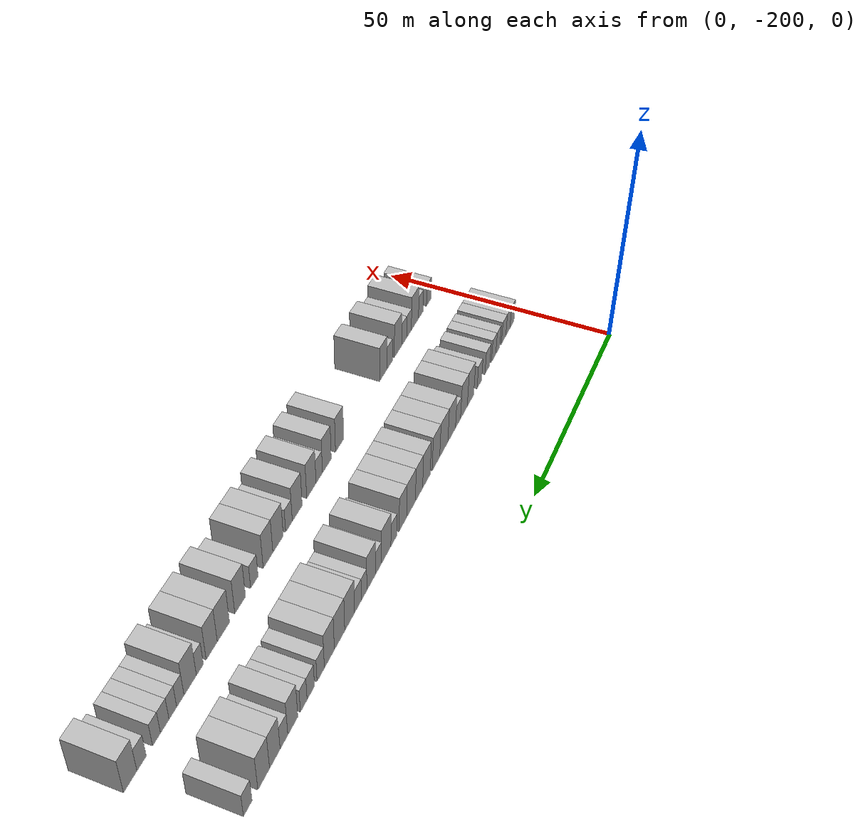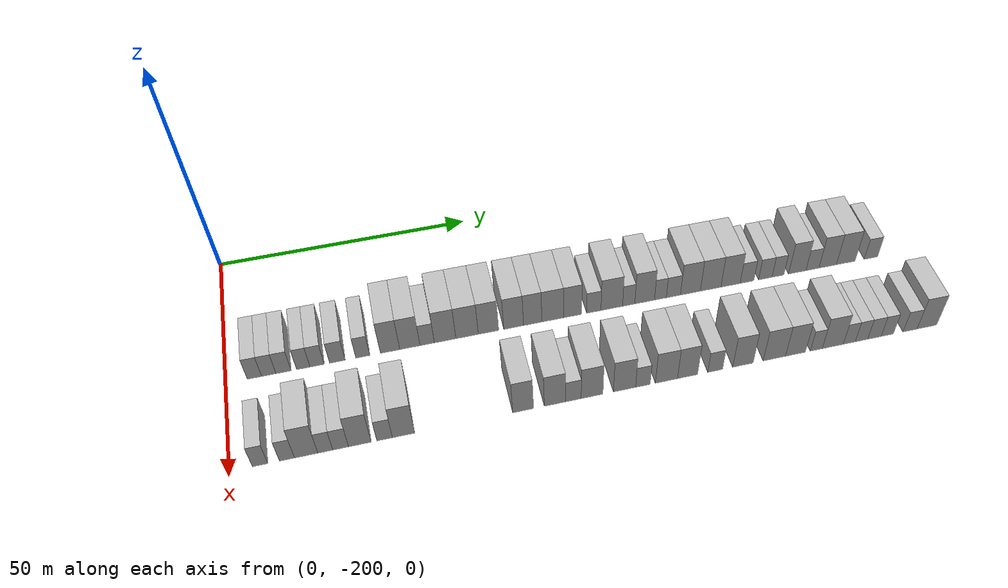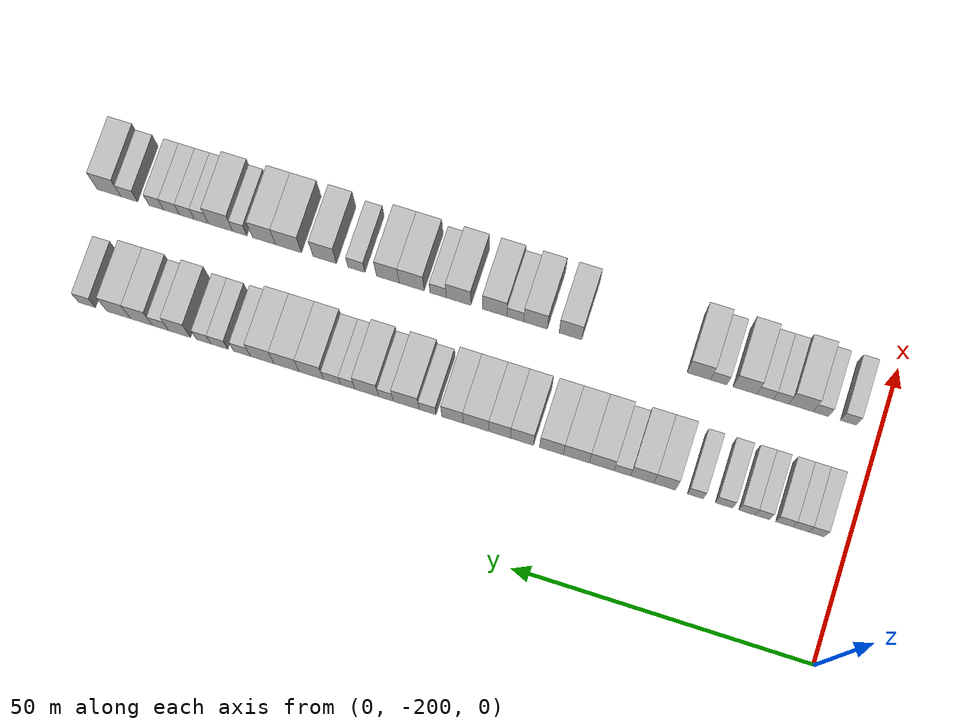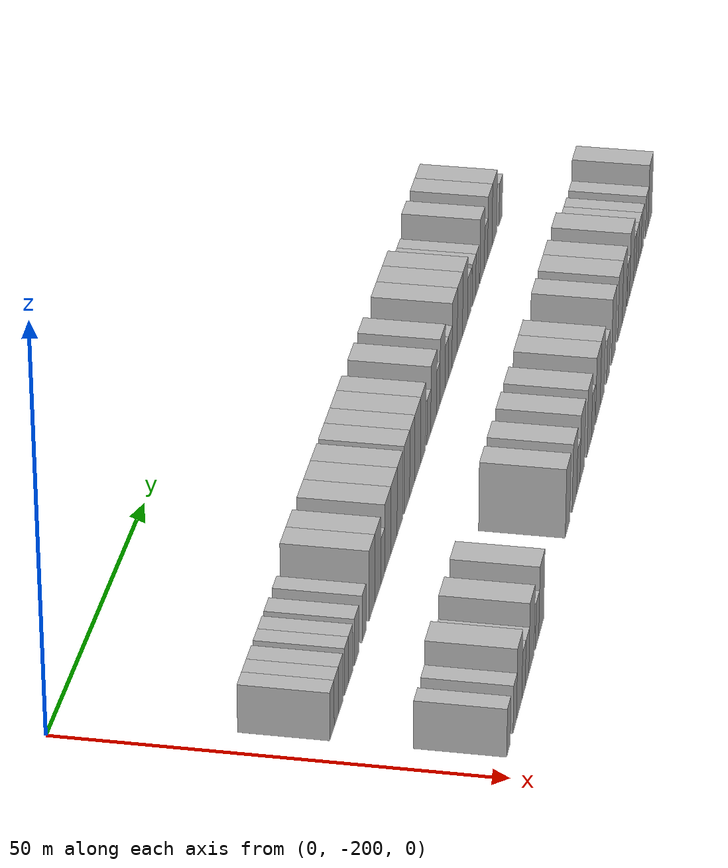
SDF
<sdf version="1.6">
 <world name="default">
  <model name="building_1">
   <static>1</static>
   <pose>25.0000 -194.6913 0 0.000000 0.000000 0.000000</pose>
   <link name="link">
    <pose>0 0 3.00 0 0 0</pose>
    <collision name="collision"><geometry><box><size>10.0000 2.6174 6.0000</size></box></geometry></collision>
    <visual name="visual">
     <cast_shadows>0</cast_shadows>
     <geometry><box><size>10.0000 2.6174 6.0000</size></box></geometry>
     <material>
      <script>
       <uri>model://HANNAS_wall/materials/scripts</uri>
       <uri>model://HANNAS_wall/materials/textures</uri>
       <name>vrc/HANNAS_wall</name>
      </script>
     </material>
    </visual>
   </link>
  </model>
  <model name="building_2">
   <static>1</static>
   <pose>25.0000 -192.0661 0 0.000000 0.000000 0.000000</pose>
   <link name="link">
    <pose>0 0 3.00 0 0 0</pose>
    <collision name="collision"><geometry><box><size>10.0000 2.6331 6.0000</size></box></geometry></collision>
    <visual name="visual">
     <cast_shadows>0</cast_shadows>
     <geometry><box><size>10.0000 2.6331 6.0000</size></box></geometry>
     <material>
      <script>
       <uri>model://HANNAS_wall/materials/scripts</uri>
       <uri>model://HANNAS_wall/materials/textures</uri>
       <name>vrc/HANNAS_wall</name>
      </script>
     </material>
    </visual>
   </link>
  </model>
  <model name="building_3">
   <static>1</static>
   <pose>25.0000 -189.3518 0 0.000000 0.000000 0.000000</pose>
   <link name="link">
    <pose>0 0 3.00 0 0 0</pose>
    <collision name="collision"><geometry><box><size>10.0000 2.7956 6.0000</size></box></geometry></collision>
    <visual name="visual">
     <cast_shadows>0</cast_shadows>
     <geometry><box><size>10.0000 2.7956 6.0000</size></box></geometry>
     <material>
      <script>
       <uri>model://HANNAS_wall/materials/scripts</uri>
       <uri>model://HANNAS_wall/materials/textures</uri>
       <name>vrc/HANNAS_wall</name>
      </script>
     </material>
    </visual>
   </link>
  </model>
  <model name="building_4">
   <static>1</static>
   <pose>25.0000 -185.7143 0 0.000000 0.000000 0.000000</pose>
   <link name="link">
    <pose>0 0 3.00 0 0 0</pose>
    <collision name="collision"><geometry><box><size>10.0000 2.4792 6.0000</size></box></geometry></collision>
    <visual name="visual">
     <cast_shadows>0</cast_shadows>
     <geometry><box><size>10.0000 2.4792 6.0000</size></box></geometry>
     <material>
      <script>
       <uri>model://HANNAS_wall/materials/scripts</uri>
       <uri>model://HANNAS_wall/materials/textures</uri>
       <name>vrc/HANNAS_wall</name>
      </script>
     </material>
    </visual>
   </link>
  </model>
  <model name="building_5">
   <static>1</static>
   <pose>25.0000 -183.1439 0 0.000000 0.000000 0.000000</pose>
   <link name="link">
    <pose>0 0 3.00 0 0 0</pose>
    <collision name="collision"><geometry><box><size>10.0000 2.6617 6.0000</size></box></geometry></collision>
    <visual name="visual">
     <cast_shadows>0</cast_shadows>
     <geometry><box><size>10.0000 2.6617 6.0000</size></box></geometry>
     <material>
      <script>
       <uri>model://HANNAS_wall/materials/scripts</uri>
       <uri>model://HANNAS_wall/materials/textures</uri>
       <name>vrc/HANNAS_wall</name>
      </script>
     </material>
    </visual>
   </link>
  </model>
  <model name="building_6">
   <static>1</static>
   <pose>25.0000 -179.3535 0 0.000000 0.000000 0.000000</pose>
   <link name="link">
    <pose>0 0 3.00 0 0 0</pose>
    <collision name="collision"><geometry><box><size>10.0000 2.9190 6.0000</size></box></geometry></collision>
    <visual name="visual">
     <cast_shadows>0</cast_shadows>
     <geometry><box><size>10.0000 2.9190 6.0000</size></box></geometry>
     <material>
      <script>
       <uri>model://HANNAS_wall/materials/scripts</uri>
       <uri>model://HANNAS_wall/materials/textures</uri>
       <name>vrc/HANNAS_wall</name>
      </script>
     </material>
    </visual>
   </link>
  </model>
  <model name="building_7">
   <static>1</static>
   <pose>25.0000 -174.5721 0 0.000000 0.000000 0.000000</pose>
   <link name="link">
    <pose>0 0 3.00 0 0 0</pose>
    <collision name="collision"><geometry><box><size>10.0000 2.6437 6.0000</size></box></geometry></collision>
    <visual name="visual">
     <cast_shadows>0</cast_shadows>
     <geometry><box><size>10.0000 2.6437 6.0000</size></box></geometry>
     <material>
      <script>
       <uri>model://HANNAS_wall/materials/scripts</uri>
       <uri>model://HANNAS_wall/materials/textures</uri>
       <name>vrc/HANNAS_wall</name>
      </script>
     </material>
    </visual>
   </link>
  </model>
  <model name="building_8">
   <static>1</static>
   <pose>25.0000 -169.4105 0 0.000000 0.000000 0.000000</pose>
   <link name="link">
    <pose>0 0 4.50 0 0 0</pose>
    <collision name="collision"><geometry><box><size>10.0000 3.6795 9.0000</size></box></geometry></collision>
    <visual name="visual">
     <cast_shadows>0</cast_shadows>
     <geometry><box><size>10.0000 3.6795 9.0000</size></box></geometry>
     <material>
      <script>
       <uri>model://HANNAS_wall/materials/scripts</uri>
       <uri>model://HANNAS_wall/materials/textures</uri>
       <name>vrc/HANNAS_wall</name>
      </script>
     </material>
    </visual>
   </link>
  </model>
  <model name="building_9">
   <static>1</static>
   <pose>25.0000 -165.6424 0 0.000000 0.000000 0.000000</pose>
   <link name="link">
    <pose>0 0 4.50 0 0 0</pose>
    <collision name="collision"><geometry><box><size>10.0000 3.8567 9.0000</size></box></geometry></collision>
    <visual name="visual">
     <cast_shadows>0</cast_shadows>
     <geometry><box><size>10.0000 3.8567 9.0000</size></box></geometry>
     <material>
      <script>
       <uri>model://HANNAS_wall/materials/scripts</uri>
       <uri>model://HANNAS_wall/materials/textures</uri>
       <name>vrc/HANNAS_wall</name>
      </script>
     </material>
    </visual>
   </link>
  </model>
  <model name="building_10">
   <static>1</static>
   <pose>25.0000 -162.3278 0 0.000000 0.000000 0.000000</pose>
   <link name="link">
    <pose>0 0 3.00 0 0 0</pose>
    <collision name="collision"><geometry><box><size>10.0000 2.7725 6.0000</size></box></geometry></collision>
    <visual name="visual">
     <cast_shadows>0</cast_shadows>
     <geometry><box><size>10.0000 2.7725 6.0000</size></box></geometry>
     <material>
      <script>
       <uri>model://HANNAS_wall/materials/scripts</uri>
       <uri>model://HANNAS_wall/materials/textures</uri>
       <name>vrc/HANNAS_wall</name>
      </script>
     </material>
    </visual>
   </link>
  </model>
  <model name="building_11">
   <static>1</static>
   <pose>25.0000 -158.8644 0 0.000000 0.000000 0.000000</pose>
   <link name="link">
    <pose>0 0 4.50 0 0 0</pose>
    <collision name="collision"><geometry><box><size>10.0000 4.1543 9.0000</size></box></geometry></collision>
    <visual name="visual">
     <cast_shadows>0</cast_shadows>
     <geometry><box><size>10.0000 4.1543 9.0000</size></box></geometry>
     <material>
      <script>
       <uri>model://HANNAS_wall/materials/scripts</uri>
       <uri>model://HANNAS_wall/materials/textures</uri>
       <name>vrc/HANNAS_wall</name>
      </script>
     </material>
    </visual>
   </link>
  </model>
  <model name="building_12">
   <static>1</static>
   <pose>25.0000 -154.6055 0 0.000000 0.000000 0.000000</pose>
   <link name="link">
    <pose>0 0 4.50 0 0 0</pose>
    <collision name="collision"><geometry><box><size>10.0000 4.3636 9.0000</size></box></geometry></collision>
    <visual name="visual">
     <cast_shadows>0</cast_shadows>
     <geometry><box><size>10.0000 4.3636 9.0000</size></box></geometry>
     <material>
      <script>
       <uri>model://HANNAS_wall/materials/scripts</uri>
       <uri>model://HANNAS_wall/materials/textures</uri>
       <name>vrc/HANNAS_wall</name>
      </script>
     </material>
    </visual>
   </link>
  </model>
  <model name="building_13">
   <static>1</static>
   <pose>25.0000 -150.4279 0 0.000000 0.000000 0.000000</pose>
   <link name="link">
    <pose>0 0 4.50 0 0 0</pose>
    <collision name="collision"><geometry><box><size>10.0000 3.9915 9.0000</size></box></geometry></collision>
    <visual name="visual">
     <cast_shadows>0</cast_shadows>
     <geometry><box><size>10.0000 3.9915 9.0000</size></box></geometry>
     <material>
      <script>
       <uri>model://HANNAS_wall/materials/scripts</uri>
       <uri>model://HANNAS_wall/materials/textures</uri>
       <name>vrc/HANNAS_wall</name>
      </script>
     </material>
    </visual>
   </link>
  </model>
  <model name="building_14">
   <static>1</static>
   <pose>25.0000 -145.4855 0 0.000000 0.000000 0.000000</pose>
   <link name="link">
    <pose>0 0 4.50 0 0 0</pose>
    <collision name="collision"><geometry><box><size>10.0000 3.8934 9.0000</size></box></geometry></collision>
    <visual name="visual">
     <cast_shadows>0</cast_shadows>
     <geometry><box><size>10.0000 3.8934 9.0000</size></box></geometry>
     <material>
      <script>
       <uri>model://HANNAS_wall/materials/scripts</uri>
       <uri>model://HANNAS_wall/materials/textures</uri>
       <name>vrc/HANNAS_wall</name>
      </script>
     </material>
    </visual>
   </link>
  </model>
  <model name="building_15">
   <static>1</static>
   <pose>25.0000 -141.7141 0 0.000000 0.000000 0.000000</pose>
   <link name="link">
    <pose>0 0 4.50 0 0 0</pose>
    <collision name="collision"><geometry><box><size>10.0000 3.6494 9.0000</size></box></geometry></collision>
    <visual name="visual">
     <cast_shadows>0</cast_shadows>
     <geometry><box><size>10.0000 3.6494 9.0000</size></box></geometry>
     <material>
      <script>
       <uri>model://HANNAS_wall/materials/scripts</uri>
       <uri>model://HANNAS_wall/materials/textures</uri>
       <name>vrc/HANNAS_wall</name>
      </script>
     </material>
    </visual>
   </link>
  </model>
  <model name="building_16">
   <static>1</static>
   <pose>25.0000 -137.7262 0 0.000000 0.000000 0.000000</pose>
   <link name="link">
    <pose>0 0 4.50 0 0 0</pose>
    <collision name="collision"><geometry><box><size>10.0000 4.3263 9.0000</size></box></geometry></collision>
    <visual name="visual">
     <cast_shadows>0</cast_shadows>
     <geometry><box><size>10.0000 4.3263 9.0000</size></box></geometry>
     <material>
      <script>
       <uri>model://HANNAS_wall/materials/scripts</uri>
       <uri>model://HANNAS_wall/materials/textures</uri>
       <name>vrc/HANNAS_wall</name>
      </script>
     </material>
    </visual>
   </link>
  </model>
  <model name="building_17">
   <static>1</static>
   <pose>25.0000 -133.7458 0 0.000000 0.000000 0.000000</pose>
   <link name="link">
    <pose>0 0 4.50 0 0 0</pose>
    <collision name="collision"><geometry><box><size>10.0000 3.6346 9.0000</size></box></geometry></collision>
    <visual name="visual">
     <cast_shadows>0</cast_shadows>
     <geometry><box><size>10.0000 3.6346 9.0000</size></box></geometry>
     <material>
      <script>
       <uri>model://HANNAS_wall/materials/scripts</uri>
       <uri>model://HANNAS_wall/materials/textures</uri>
       <name>vrc/HANNAS_wall</name>
      </script>
     </material>
    </visual>
   </link>
  </model>
  <model name="building_18">
   <static>1</static>
   <pose>25.0000 -129.4912 0 0.000000 0.000000 0.000000</pose>
   <link name="link">
    <pose>0 0 3.00 0 0 0</pose>
    <collision name="collision"><geometry><box><size>10.0000 2.8746 6.0000</size></box></geometry></collision>
    <visual name="visual">
     <cast_shadows>0</cast_shadows>
     <geometry><box><size>10.0000 2.8746 6.0000</size></box></geometry>
     <material>
      <script>
       <uri>model://HANNAS_wall/materials/scripts</uri>
       <uri>model://HANNAS_wall/materials/textures</uri>
       <name>vrc/HANNAS_wall</name>
      </script>
     </material>
    </visual>
   </link>
  </model>
  <model name="building_19">
   <static>1</static>
   <pose>25.0000 -125.8565 0 0.000000 0.000000 0.000000</pose>
   <link name="link">
    <pose>0 0 4.50 0 0 0</pose>
    <collision name="collision"><geometry><box><size>10.0000 4.3947 9.0000</size></box></geometry></collision>
    <visual name="visual">
     <cast_shadows>0</cast_shadows>
     <geometry><box><size>10.0000 4.3947 9.0000</size></box></geometry>
     <material>
      <script>
       <uri>model://HANNAS_wall/materials/scripts</uri>
       <uri>model://HANNAS_wall/materials/textures</uri>
       <name>vrc/HANNAS_wall</name>
      </script>
     </material>
    </visual>
   </link>
  </model>
  <model name="building_20">
   <static>1</static>
   <pose>25.0000 -122.4116 0 0.000000 0.000000 0.000000</pose>
   <link name="link">
    <pose>0 0 3.00 0 0 0</pose>
    <collision name="collision"><geometry><box><size>10.0000 2.4952 6.0000</size></box></geometry></collision>
    <visual name="visual">
     <cast_shadows>0</cast_shadows>
     <geometry><box><size>10.0000 2.4952 6.0000</size></box></geometry>
     <material>
      <script>
       <uri>model://HANNAS_wall/materials/scripts</uri>
       <uri>model://HANNAS_wall/materials/textures</uri>
       <name>vrc/HANNAS_wall</name>
      </script>
     </material>
    </visual>
   </link>
  </model>
  <model name="building_21">
   <static>1</static>
   <pose>25.0000 -119.1423 0 0.000000 0.000000 0.000000</pose>
   <link name="link">
    <pose>0 0 4.50 0 0 0</pose>
    <collision name="collision"><geometry><box><size>10.0000 4.0435 9.0000</size></box></geometry></collision>
    <visual name="visual">
     <cast_shadows>0</cast_shadows>
     <geometry><box><size>10.0000 4.0435 9.0000</size></box></geometry>
     <material>
      <script>
       <uri>model://HANNAS_wall/materials/scripts</uri>
       <uri>model://HANNAS_wall/materials/textures</uri>
       <name>vrc/HANNAS_wall</name>
      </script>
     </material>
    </visual>
   </link>
  </model>
  <model name="building_22">
   <static>1</static>
   <pose>25.0000 -115.8984 0 0.000000 0.000000 0.000000</pose>
   <link name="link">
    <pose>0 0 3.00 0 0 0</pose>
    <collision name="collision"><geometry><box><size>10.0000 2.4443 6.0000</size></box></geometry></collision>
    <visual name="visual">
     <cast_shadows>0</cast_shadows>
     <geometry><box><size>10.0000 2.4443 6.0000</size></box></geometry>
     <material>
      <script>
       <uri>model://HANNAS_wall/materials/scripts</uri>
       <uri>model://HANNAS_wall/materials/textures</uri>
       <name>vrc/HANNAS_wall</name>
      </script>
     </material>
    </visual>
   </link>
  </model>
  <model name="building_23">
   <static>1</static>
   <pose>25.0000 -113.2176 0 0.000000 0.000000 0.000000</pose>
   <link name="link">
    <pose>0 0 3.00 0 0 0</pose>
    <collision name="collision"><geometry><box><size>10.0000 2.9173 6.0000</size></box></geometry></collision>
    <visual name="visual">
     <cast_shadows>0</cast_shadows>
     <geometry><box><size>10.0000 2.9173 6.0000</size></box></geometry>
     <material>
      <script>
       <uri>model://HANNAS_wall/materials/scripts</uri>
       <uri>model://HANNAS_wall/materials/textures</uri>
       <name>vrc/HANNAS_wall</name>
      </script>
     </material>
    </visual>
   </link>
  </model>
  <model name="building_24">
   <static>1</static>
   <pose>25.0000 -109.6810 0 0.000000 0.000000 0.000000</pose>
   <link name="link">
    <pose>0 0 4.50 0 0 0</pose>
    <collision name="collision"><geometry><box><size>10.0000 4.1557 9.0000</size></box></geometry></collision>
    <visual name="visual">
     <cast_shadows>0</cast_shadows>
     <geometry><box><size>10.0000 4.1557 9.0000</size></box></geometry>
     <material>
      <script>
       <uri>model://HANNAS_wall/materials/scripts</uri>
       <uri>model://HANNAS_wall/materials/textures</uri>
       <name>vrc/HANNAS_wall</name>
      </script>
     </material>
    </visual>
   </link>
  </model>
  <model name="building_25">
   <static>1</static>
   <pose>25.0000 -105.4493 0 0.000000 0.000000 0.000000</pose>
   <link name="link">
    <pose>0 0 4.50 0 0 0</pose>
    <collision name="collision"><geometry><box><size>10.0000 4.3079 9.0000</size></box></geometry></collision>
    <visual name="visual">
     <cast_shadows>0</cast_shadows>
     <geometry><box><size>10.0000 4.3079 9.0000</size></box></geometry>
     <material>
      <script>
       <uri>model://HANNAS_wall/materials/scripts</uri>
       <uri>model://HANNAS_wall/materials/textures</uri>
       <name>vrc/HANNAS_wall</name>
      </script>
     </material>
    </visual>
   </link>
  </model>
  <model name="building_26">
   <static>1</static>
   <pose>25.0000 -101.2713 0 0.000000 0.000000 0.000000</pose>
   <link name="link">
    <pose>0 0 4.50 0 0 0</pose>
    <collision name="collision"><geometry><box><size>10.0000 4.0480 9.0000</size></box></geometry></collision>
    <visual name="visual">
     <cast_shadows>0</cast_shadows>
     <geometry><box><size>10.0000 4.0480 9.0000</size></box></geometry>
     <material>
      <script>
       <uri>model://HANNAS_wall/materials/scripts</uri>
       <uri>model://HANNAS_wall/materials/textures</uri>
       <name>vrc/HANNAS_wall</name>
      </script>
     </material>
    </visual>
   </link>
  </model>
  <model name="building_27">
   <static>1</static>
   <pose>25.0000 -97.7955 0 0.000000 0.000000 0.000000</pose>
   <link name="link">
    <pose>0 0 3.00 0 0 0</pose>
    <collision name="collision"><geometry><box><size>10.0000 2.9036 6.0000</size></box></geometry></collision>
    <visual name="visual">
     <cast_shadows>0</cast_shadows>
     <geometry><box><size>10.0000 2.9036 6.0000</size></box></geometry>
     <material>
      <script>
       <uri>model://HANNAS_wall/materials/scripts</uri>
       <uri>model://HANNAS_wall/materials/textures</uri>
       <name>vrc/HANNAS_wall</name>
      </script>
     </material>
    </visual>
   </link>
  </model>
  <model name="building_28">
   <static>1</static>
   <pose>25.0000 -93.9045 0 0.000000 0.000000 0.000000</pose>
   <link name="link">
    <pose>0 0 3.00 0 0 0</pose>
    <collision name="collision"><geometry><box><size>10.0000 2.8784 6.0000</size></box></geometry></collision>
    <visual name="visual">
     <cast_shadows>0</cast_shadows>
     <geometry><box><size>10.0000 2.8784 6.0000</size></box></geometry>
     <material>
      <script>
       <uri>model://HANNAS_wall/materials/scripts</uri>
       <uri>model://HANNAS_wall/materials/textures</uri>
       <name>vrc/HANNAS_wall</name>
      </script>
     </material>
    </visual>
   </link>
  </model>
  <model name="building_29">
   <static>1</static>
   <pose>25.0000 -91.1947 0 0.000000 0.000000 0.000000</pose>
   <link name="link">
    <pose>0 0 3.00 0 0 0</pose>
    <collision name="collision"><geometry><box><size>10.0000 2.5411 6.0000</size></box></geometry></collision>
    <visual name="visual">
     <cast_shadows>0</cast_shadows>
     <geometry><box><size>10.0000 2.5411 6.0000</size></box></geometry>
     <material>
      <script>
       <uri>model://HANNAS_wall/materials/scripts</uri>
       <uri>model://HANNAS_wall/materials/textures</uri>
       <name>vrc/HANNAS_wall</name>
      </script>
     </material>
    </visual>
   </link>
  </model>
  <model name="building_30">
   <static>1</static>
   <pose>25.0000 -87.0586 0 0.000000 0.000000 0.000000</pose>
   <link name="link">
    <pose>0 0 4.50 0 0 0</pose>
    <collision name="collision"><geometry><box><size>10.0000 3.7311 9.0000</size></box></geometry></collision>
    <visual name="visual">
     <cast_shadows>0</cast_shadows>
     <geometry><box><size>10.0000 3.7311 9.0000</size></box></geometry>
     <material>
      <script>
       <uri>model://HANNAS_wall/materials/scripts</uri>
       <uri>model://HANNAS_wall/materials/textures</uri>
       <name>vrc/HANNAS_wall</name>
      </script>
     </material>
    </visual>
   </link>
  </model>
  <model name="building_31">
   <static>1</static>
   <pose>25.0000 -83.7866 0 0.000000 0.000000 0.000000</pose>
   <link name="link">
    <pose>0 0 3.00 0 0 0</pose>
    <collision name="collision"><geometry><box><size>10.0000 2.8130 6.0000</size></box></geometry></collision>
    <visual name="visual">
     <cast_shadows>0</cast_shadows>
     <geometry><box><size>10.0000 2.8130 6.0000</size></box></geometry>
     <material>
      <script>
       <uri>model://HANNAS_wall/materials/scripts</uri>
       <uri>model://HANNAS_wall/materials/textures</uri>
       <name>vrc/HANNAS_wall</name>
      </script>
     </material>
    </visual>
   </link>
  </model>
  <model name="building_32">
   <static>1</static>
   <pose>25.0000 -80.4817 0 0.000000 0.000000 0.000000</pose>
   <link name="link">
    <pose>0 0 4.50 0 0 0</pose>
    <collision name="collision"><geometry><box><size>10.0000 3.7967 9.0000</size></box></geometry></collision>
    <visual name="visual">
     <cast_shadows>0</cast_shadows>
     <geometry><box><size>10.0000 3.7967 9.0000</size></box></geometry>
     <material>
      <script>
       <uri>model://HANNAS_wall/materials/scripts</uri>
       <uri>model://HANNAS_wall/materials/textures</uri>
       <name>vrc/HANNAS_wall</name>
      </script>
     </material>
    </visual>
   </link>
  </model>
  <model name="building_33">
   <static>1</static>
   <pose>25.0000 -76.5333 0 0.000000 0.000000 0.000000</pose>
   <link name="link">
    <pose>0 0 4.50 0 0 0</pose>
    <collision name="collision"><geometry><box><size>10.0000 4.1000 9.0000</size></box></geometry></collision>
    <visual name="visual">
     <cast_shadows>0</cast_shadows>
     <geometry><box><size>10.0000 4.1000 9.0000</size></box></geometry>
     <material>
      <script>
       <uri>model://HANNAS_wall/materials/scripts</uri>
       <uri>model://HANNAS_wall/materials/textures</uri>
       <name>vrc/HANNAS_wall</name>
      </script>
     </material>
    </visual>
   </link>
  </model>
  <model name="building_34">
   <static>1</static>
   <pose>25.0000 -71.0130 0 0.000000 0.000000 0.000000</pose>
   <link name="link">
    <pose>0 0 3.00 0 0 0</pose>
    <collision name="collision"><geometry><box><size>10.0000 2.9405 6.0000</size></box></geometry></collision>
    <visual name="visual">
     <cast_shadows>0</cast_shadows>
     <geometry><box><size>10.0000 2.9405 6.0000</size></box></geometry>
     <material>
      <script>
       <uri>model://HANNAS_wall/materials/scripts</uri>
       <uri>model://HANNAS_wall/materials/textures</uri>
       <name>vrc/HANNAS_wall</name>
      </script>
     </material>
    </visual>
   </link>
  </model>
  <model name="building_99">
   <static>1</static>
   <pose>44.0000 -194.6767 0 0.000000 0.000000 0.000000</pose>
   <link name="link">
    <pose>0 0 3.00 0 0 0</pose>
    <collision name="collision"><geometry><box><size>10.0000 2.6466 6.0000</size></box></geometry></collision>
    <visual name="visual">
     <cast_shadows>0</cast_shadows>
     <geometry><box><size>10.0000 2.6466 6.0000</size></box></geometry>
     <material>
      <script>
       <uri>model://HANNAS_wall/materials/scripts</uri>
       <uri>model://HANNAS_wall/materials/textures</uri>
       <name>vrc/HANNAS_wall</name>
      </script>
     </material>
    </visual>
   </link>
  </model>
  <model name="building_100">
   <static>1</static>
   <pose>44.0000 -190.0452 0 0.000000 0.000000 0.000000</pose>
   <link name="link">
    <pose>0 0 3.00 0 0 0</pose>
    <collision name="collision"><geometry><box><size>10.0000 2.6166 6.0000</size></box></geometry></collision>
    <visual name="visual">
     <cast_shadows>0</cast_shadows>
     <geometry><box><size>10.0000 2.6166 6.0000</size></box></geometry>
     <material>
      <script>
       <uri>model://HANNAS_wall/materials/scripts</uri>
       <uri>model://HANNAS_wall/materials/textures</uri>
       <name>vrc/HANNAS_wall</name>
      </script>
     </material>
    </visual>
   </link>
  </model>
  <model name="building_101">
   <static>1</static>
   <pose>44.0000 -186.7082 0 0.000000 0.000000 0.000000</pose>
   <link name="link">
    <pose>0 0 4.50 0 0 0</pose>
    <collision name="collision"><geometry><box><size>10.0000 4.0575 9.0000</size></box></geometry></collision>
    <visual name="visual">
     <cast_shadows>0</cast_shadows>
     <geometry><box><size>10.0000 4.0575 9.0000</size></box></geometry>
     <material>
      <script>
       <uri>model://HANNAS_wall/materials/scripts</uri>
       <uri>model://HANNAS_wall/materials/textures</uri>
       <name>vrc/HANNAS_wall</name>
      </script>
     </material>
    </visual>
   </link>
  </model>
  <model name="building_102">
   <static>1</static>
   <pose>44.0000 -183.3749 0 0.000000 0.000000 0.000000</pose>
   <link name="link">
    <pose>0 0 3.00 0 0 0</pose>
    <collision name="collision"><geometry><box><size>10.0000 2.6091 6.0000</size></box></geometry></collision>
    <visual name="visual">
     <cast_shadows>0</cast_shadows>
     <geometry><box><size>10.0000 2.6091 6.0000</size></box></geometry>
     <material>
      <script>
       <uri>model://HANNAS_wall/materials/scripts</uri>
       <uri>model://HANNAS_wall/materials/textures</uri>
       <name>vrc/HANNAS_wall</name>
      </script>
     </material>
    </visual>
   </link>
  </model>
  <model name="building_103">
   <static>1</static>
   <pose>44.0000 -180.6773 0 0.000000 0.000000 0.000000</pose>
   <link name="link">
    <pose>0 0 3.00 0 0 0</pose>
    <collision name="collision"><geometry><box><size>10.0000 2.7860 6.0000</size></box></geometry></collision>
    <visual name="visual">
     <cast_shadows>0</cast_shadows>
     <geometry><box><size>10.0000 2.7860 6.0000</size></box></geometry>
     <material>
      <script>
       <uri>model://HANNAS_wall/materials/scripts</uri>
       <uri>model://HANNAS_wall/materials/textures</uri>
       <name>vrc/HANNAS_wall</name>
      </script>
     </material>
    </visual>
   </link>
  </model>
  <model name="building_104">
   <static>1</static>
   <pose>44.0000 -177.2849 0 0.000000 0.000000 0.000000</pose>
   <link name="link">
    <pose>0 0 4.50 0 0 0</pose>
    <collision name="collision"><geometry><box><size>10.0000 3.9989 9.0000</size></box></geometry></collision>
    <visual name="visual">
     <cast_shadows>0</cast_shadows>
     <geometry><box><size>10.0000 3.9989 9.0000</size></box></geometry>
     <material>
      <script>
       <uri>model://HANNAS_wall/materials/scripts</uri>
       <uri>model://HANNAS_wall/materials/textures</uri>
       <name>vrc/HANNAS_wall</name>
      </script>
     </material>
    </visual>
   </link>
  </model>
  <model name="building_105">
   <static>1</static>
   <pose>44.0000 -172.8949 0 0.000000 0.000000 0.000000</pose>
   <link name="link">
    <pose>0 0 3.00 0 0 0</pose>
    <collision name="collision"><geometry><box><size>10.0000 2.7812 6.0000</size></box></geometry></collision>
    <visual name="visual">
     <cast_shadows>0</cast_shadows>
     <geometry><box><size>10.0000 2.7812 6.0000</size></box></geometry>
     <material>
      <script>
       <uri>model://HANNAS_wall/materials/scripts</uri>
       <uri>model://HANNAS_wall/materials/textures</uri>
       <name>vrc/HANNAS_wall</name>
      </script>
     </material>
    </visual>
   </link>
  </model>
  <model name="building_106">
   <static>1</static>
   <pose>44.0000 -169.5135 0 0.000000 0.000000 0.000000</pose>
   <link name="link">
    <pose>0 0 4.50 0 0 0</pose>
    <collision name="collision"><geometry><box><size>10.0000 3.9815 9.0000</size></box></geometry></collision>
    <visual name="visual">
     <cast_shadows>0</cast_shadows>
     <geometry><box><size>10.0000 3.9815 9.0000</size></box></geometry>
     <material>
      <script>
       <uri>model://HANNAS_wall/materials/scripts</uri>
       <uri>model://HANNAS_wall/materials/textures</uri>
       <name>vrc/HANNAS_wall</name>
      </script>
     </material>
    </visual>
   </link>
  </model>
  <model name="building_107">
   <static>1</static>
   <pose>44.0000 -147.7225 0 0.000000 0.000000 0.000000</pose>
   <link name="link">
    <pose>0 0 4.50 0 0 0</pose>
    <collision name="collision"><geometry><box><size>10.0000 3.8668 9.0000</size></box></geometry></collision>
    <visual name="visual">
     <cast_shadows>0</cast_shadows>
     <geometry><box><size>10.0000 3.8668 9.0000</size></box></geometry>
     <material>
      <script>
       <uri>model://HANNAS_wall/materials/scripts</uri>
       <uri>model://HANNAS_wall/materials/textures</uri>
       <name>vrc/HANNAS_wall</name>
      </script>
     </material>
    </visual>
   </link>
  </model>
  <model name="building_108">
   <static>1</static>
   <pose>44.0000 -141.7808 0 0.000000 0.000000 0.000000</pose>
   <link name="link">
    <pose>0 0 4.50 0 0 0</pose>
    <collision name="collision"><geometry><box><size>10.0000 4.0166 9.0000</size></box></geometry></collision>
    <visual name="visual">
     <cast_shadows>0</cast_shadows>
     <geometry><box><size>10.0000 4.0166 9.0000</size></box></geometry>
     <material>
      <script>
       <uri>model://HANNAS_wall/materials/scripts</uri>
       <uri>model://HANNAS_wall/materials/textures</uri>
       <name>vrc/HANNAS_wall</name>
      </script>
     </material>
    </visual>
   </link>
  </model>
  <model name="building_109">
   <static>1</static>
   <pose>44.0000 -138.3194 0 0.000000 0.000000 0.000000</pose>
   <link name="link">
    <pose>0 0 3.00 0 0 0</pose>
    <collision name="collision"><geometry><box><size>10.0000 2.9062 6.0000</size></box></geometry></collision>
    <visual name="visual">
     <cast_shadows>0</cast_shadows>
     <geometry><box><size>10.0000 2.9062 6.0000</size></box></geometry>
     <material>
      <script>
       <uri>model://HANNAS_wall/materials/scripts</uri>
       <uri>model://HANNAS_wall/materials/textures</uri>
       <name>vrc/HANNAS_wall</name>
      </script>
     </material>
    </visual>
   </link>
  </model>
  <model name="building_110">
   <static>1</static>
   <pose>44.0000 -134.8042 0 0.000000 0.000000 0.000000</pose>
   <link name="link">
    <pose>0 0 4.50 0 0 0</pose>
    <collision name="collision"><geometry><box><size>10.0000 4.1242 9.0000</size></box></geometry></collision>
    <visual name="visual">
     <cast_shadows>0</cast_shadows>
     <geometry><box><size>10.0000 4.1242 9.0000</size></box></geometry>
     <material>
      <script>
       <uri>model://HANNAS_wall/materials/scripts</uri>
       <uri>model://HANNAS_wall/materials/textures</uri>
       <name>vrc/HANNAS_wall</name>
      </script>
     </material>
    </visual>
   </link>
  </model>
  <model name="building_111">
   <static>1</static>
   <pose>44.0000 -128.6199 0 0.000000 0.000000 0.000000</pose>
   <link name="link">
    <pose>0 0 4.50 0 0 0</pose>
    <collision name="collision"><geometry><box><size>10.0000 4.2445 9.0000</size></box></geometry></collision>
    <visual name="visual">
     <cast_shadows>0</cast_shadows>
     <geometry><box><size>10.0000 4.2445 9.0000</size></box></geometry>
     <material>
      <script>
       <uri>model://HANNAS_wall/materials/scripts</uri>
       <uri>model://HANNAS_wall/materials/textures</uri>
       <name>vrc/HANNAS_wall</name>
      </script>
     </material>
    </visual>
   </link>
  </model>
  <model name="building_112">
   <static>1</static>
   <pose>44.0000 -125.0983 0 0.000000 0.000000 0.000000</pose>
   <link name="link">
    <pose>0 0 3.00 0 0 0</pose>
    <collision name="collision"><geometry><box><size>10.0000 2.7988 6.0000</size></box></geometry></collision>
    <visual name="visual">
     <cast_shadows>0</cast_shadows>
     <geometry><box><size>10.0000 2.7988 6.0000</size></box></geometry>
     <material>
      <script>
       <uri>model://HANNAS_wall/materials/scripts</uri>
       <uri>model://HANNAS_wall/materials/textures</uri>
       <name>vrc/HANNAS_wall</name>
      </script>
     </material>
    </visual>
   </link>
  </model>
  <model name="building_113">
   <static>1</static>
   <pose>44.0000 -120.5499 0 0.000000 0.000000 0.000000</pose>
   <link name="link">
    <pose>0 0 4.50 0 0 0</pose>
    <collision name="collision"><geometry><box><size>10.0000 4.2979 9.0000</size></box></geometry></collision>
    <visual name="visual">
     <cast_shadows>0</cast_shadows>
     <geometry><box><size>10.0000 4.2979 9.0000</size></box></geometry>
     <material>
      <script>
       <uri>model://HANNAS_wall/materials/scripts</uri>
       <uri>model://HANNAS_wall/materials/textures</uri>
       <name>vrc/HANNAS_wall</name>
      </script>
     </material>
    </visual>
   </link>
  </model>
  <model name="building_114">
   <static>1</static>
   <pose>44.0000 -116.4455 0 0.000000 0.000000 0.000000</pose>
   <link name="link">
    <pose>0 0 4.50 0 0 0</pose>
    <collision name="collision"><geometry><box><size>10.0000 3.9110 9.0000</size></box></geometry></collision>
    <visual name="visual">
     <cast_shadows>0</cast_shadows>
     <geometry><box><size>10.0000 3.9110 9.0000</size></box></geometry>
     <material>
      <script>
       <uri>model://HANNAS_wall/materials/scripts</uri>
       <uri>model://HANNAS_wall/materials/textures</uri>
       <name>vrc/HANNAS_wall</name>
      </script>
     </material>
    </visual>
   </link>
  </model>
  <model name="building_115">
   <static>1</static>
   <pose>44.0000 -111.0306 0 0.000000 0.000000 0.000000</pose>
   <link name="link">
    <pose>0 0 3.00 0 0 0</pose>
    <collision name="collision"><geometry><box><size>10.0000 2.9186 6.0000</size></box></geometry></collision>
    <visual name="visual">
     <cast_shadows>0</cast_shadows>
     <geometry><box><size>10.0000 2.9186 6.0000</size></box></geometry>
     <material>
      <script>
       <uri>model://HANNAS_wall/materials/scripts</uri>
       <uri>model://HANNAS_wall/materials/textures</uri>
       <name>vrc/HANNAS_wall</name>
      </script>
     </material>
    </visual>
   </link>
  </model>
  <model name="building_116">
   <static>1</static>
   <pose>44.0000 -105.5404 0 0.000000 0.000000 0.000000</pose>
   <link name="link">
    <pose>0 0 4.50 0 0 0</pose>
    <collision name="collision"><geometry><box><size>10.0000 4.0619 9.0000</size></box></geometry></collision>
    <visual name="visual">
     <cast_shadows>0</cast_shadows>
     <geometry><box><size>10.0000 4.0619 9.0000</size></box></geometry>
     <material>
      <script>
       <uri>model://HANNAS_wall/materials/scripts</uri>
       <uri>model://HANNAS_wall/materials/textures</uri>
       <name>vrc/HANNAS_wall</name>
      </script>
     </material>
    </visual>
   </link>
  </model>
  <model name="building_117">
   <static>1</static>
   <pose>44.0000 -99.2644 0 0.000000 0.000000 0.000000</pose>
   <link name="link">
    <pose>0 0 4.50 0 0 0</pose>
    <collision name="collision"><geometry><box><size>10.0000 4.4901 9.0000</size></box></geometry></collision>
    <visual name="visual">
     <cast_shadows>0</cast_shadows>
     <geometry><box><size>10.0000 4.4901 9.0000</size></box></geometry>
     <material>
      <script>
       <uri>model://HANNAS_wall/materials/scripts</uri>
       <uri>model://HANNAS_wall/materials/textures</uri>
       <name>vrc/HANNAS_wall</name>
      </script>
     </material>
    </visual>
   </link>
  </model>
  <model name="building_118">
   <static>1</static>
   <pose>44.0000 -95.0188 0 0.000000 0.000000 0.000000</pose>
   <link name="link">
    <pose>0 0 4.50 0 0 0</pose>
    <collision name="collision"><geometry><box><size>10.0000 4.0011 9.0000</size></box></geometry></collision>
    <visual name="visual">
     <cast_shadows>0</cast_shadows>
     <geometry><box><size>10.0000 4.0011 9.0000</size></box></geometry>
     <material>
      <script>
       <uri>model://HANNAS_wall/materials/scripts</uri>
       <uri>model://HANNAS_wall/materials/textures</uri>
       <name>vrc/HANNAS_wall</name>
      </script>
     </material>
    </visual>
   </link>
  </model>
  <model name="building_119">
   <static>1</static>
   <pose>44.0000 -90.8053 0 0.000000 0.000000 0.000000</pose>
   <link name="link">
    <pose>0 0 3.00 0 0 0</pose>
    <collision name="collision"><geometry><box><size>10.0000 2.4258 6.0000</size></box></geometry></collision>
    <visual name="visual">
     <cast_shadows>0</cast_shadows>
     <geometry><box><size>10.0000 2.4258 6.0000</size></box></geometry>
     <material>
      <script>
       <uri>model://HANNAS_wall/materials/scripts</uri>
       <uri>model://HANNAS_wall/materials/textures</uri>
       <name>vrc/HANNAS_wall</name>
      </script>
     </material>
    </visual>
   </link>
  </model>
  <model name="building_120">
   <static>1</static>
   <pose>44.0000 -87.4531 0 0.000000 0.000000 0.000000</pose>
   <link name="link">
    <pose>0 0 4.50 0 0 0</pose>
    <collision name="collision"><geometry><box><size>10.0000 4.2787 9.0000</size></box></geometry></collision>
    <visual name="visual">
     <cast_shadows>0</cast_shadows>
     <geometry><box><size>10.0000 4.2787 9.0000</size></box></geometry>
     <material>
      <script>
       <uri>model://HANNAS_wall/materials/scripts</uri>
       <uri>model://HANNAS_wall/materials/textures</uri>
       <name>vrc/HANNAS_wall</name>
      </script>
     </material>
    </visual>
   </link>
  </model>
  <model name="building_121">
   <static>1</static>
   <pose>44.0000 -84.0812 0 0.000000 0.000000 0.000000</pose>
   <link name="link">
    <pose>0 0 3.00 0 0 0</pose>
    <collision name="collision"><geometry><box><size>10.0000 2.4651 6.0000</size></box></geometry></collision>
    <visual name="visual">
     <cast_shadows>0</cast_shadows>
     <geometry><box><size>10.0000 2.4651 6.0000</size></box></geometry>
     <material>
      <script>
       <uri>model://HANNAS_wall/materials/scripts</uri>
       <uri>model://HANNAS_wall/materials/textures</uri>
       <name>vrc/HANNAS_wall</name>
      </script>
     </material>
    </visual>
   </link>
  </model>
  <model name="building_122">
   <static>1</static>
   <pose>44.0000 -81.5686 0 0.000000 0.000000 0.000000</pose>
   <link name="link">
    <pose>0 0 3.00 0 0 0</pose>
    <collision name="collision"><geometry><box><size>10.0000 2.5601 6.0000</size></box></geometry></collision>
    <visual name="visual">
     <cast_shadows>0</cast_shadows>
     <geometry><box><size>10.0000 2.5601 6.0000</size></box></geometry>
     <material>
      <script>
       <uri>model://HANNAS_wall/materials/scripts</uri>
       <uri>model://HANNAS_wall/materials/textures</uri>
       <name>vrc/HANNAS_wall</name>
      </script>
     </material>
    </visual>
   </link>
  </model>
  <model name="building_123">
   <static>1</static>
   <pose>44.0000 -78.8961 0 0.000000 0.000000 0.000000</pose>
   <link name="link">
    <pose>0 0 3.00 0 0 0</pose>
    <collision name="collision"><geometry><box><size>10.0000 2.7849 6.0000</size></box></geometry></collision>
    <visual name="visual">
     <cast_shadows>0</cast_shadows>
     <geometry><box><size>10.0000 2.7849 6.0000</size></box></geometry>
     <material>
      <script>
       <uri>model://HANNAS_wall/materials/scripts</uri>
       <uri>model://HANNAS_wall/materials/textures</uri>
       <name>vrc/HANNAS_wall</name>
      </script>
     </material>
    </visual>
   </link>
  </model>
  <model name="building_124">
   <static>1</static>
   <pose>44.0000 -76.2261 0 0.000000 0.000000 0.000000</pose>
   <link name="link">
    <pose>0 0 3.00 0 0 0</pose>
    <collision name="collision"><geometry><box><size>10.0000 2.5551 6.0000</size></box></geometry></collision>
    <visual name="visual">
     <cast_shadows>0</cast_shadows>
     <geometry><box><size>10.0000 2.5551 6.0000</size></box></geometry>
     <material>
      <script>
       <uri>model://HANNAS_wall/materials/scripts</uri>
       <uri>model://HANNAS_wall/materials/textures</uri>
       <name>vrc/HANNAS_wall</name>
      </script>
     </material>
    </visual>
   </link>
  </model>
  <model name="building_125">
   <static>1</static>
   <pose>44.0000 -71.4817 0 0.000000 0.000000 0.000000</pose>
   <link name="link">
    <pose>0 0 3.00 0 0 0</pose>
    <collision name="collision"><geometry><box><size>10.0000 2.9337 6.0000</size></box></geometry></collision>
    <visual name="visual">
     <cast_shadows>0</cast_shadows>
     <geometry><box><size>10.0000 2.9337 6.0000</size></box></geometry>
     <material>
      <script>
       <uri>model://HANNAS_wall/materials/scripts</uri>
       <uri>model://HANNAS_wall/materials/textures</uri>
       <name>vrc/HANNAS_wall</name>
      </script>
     </material>
    </visual>
   </link>
  </model>
  <model name="building_126">
   <static>1</static>
   <pose>44.0000 -67.9407 0 0.000000 0.000000 0.000000</pose>
   <link name="link">
    <pose>0 0 4.50 0 0 0</pose>
    <collision name="collision"><geometry><box><size>10.0000 4.1482 9.0000</size></box></geometry></collision>
    <visual name="visual">
     <cast_shadows>0</cast_shadows>
     <geometry><box><size>10.0000 4.1482 9.0000</size></box></geometry>
     <material>
      <script>
       <uri>model://HANNAS_wall/materials/scripts</uri>
       <uri>model://HANNAS_wall/materials/textures</uri>
       <name>vrc/HANNAS_wall</name>
      </script>
     </material>
    </visual>
   </link>
  </model>
 </world>
</sdf>
